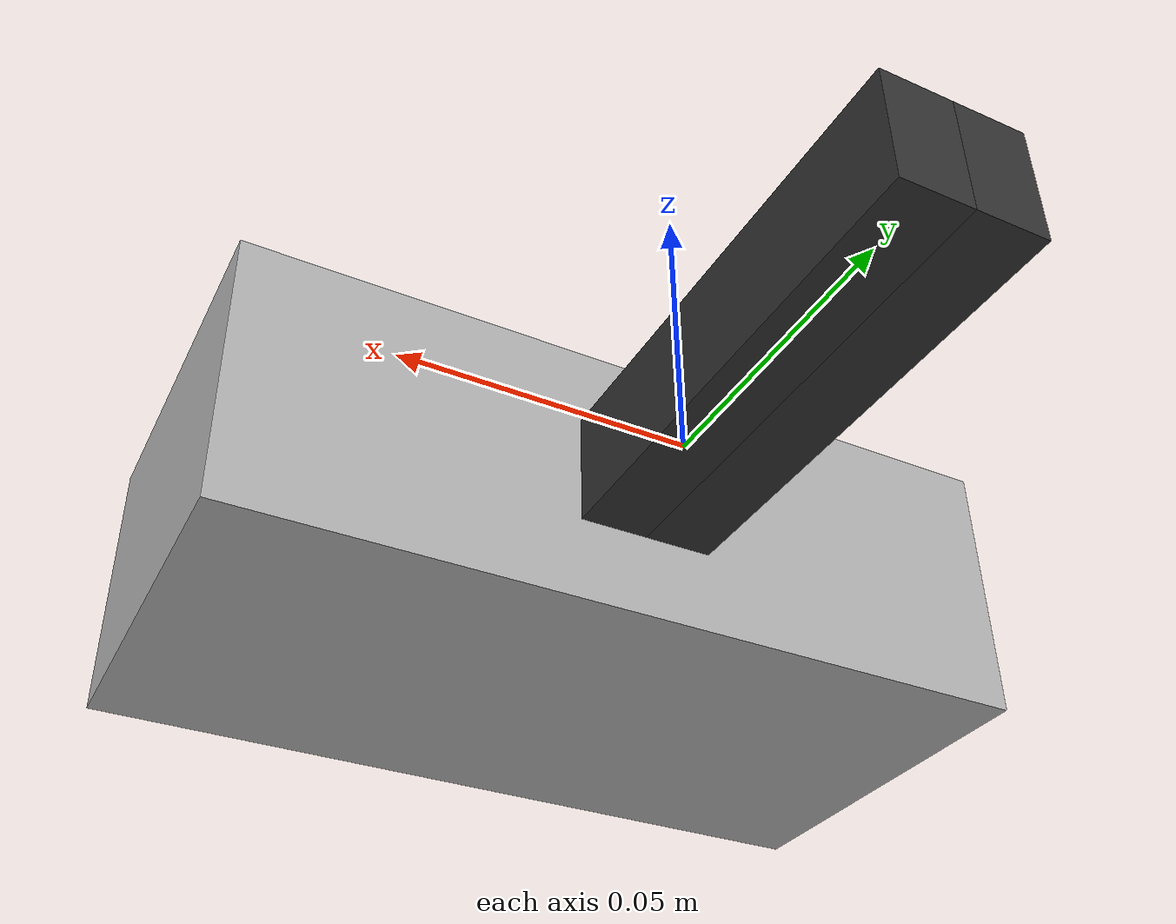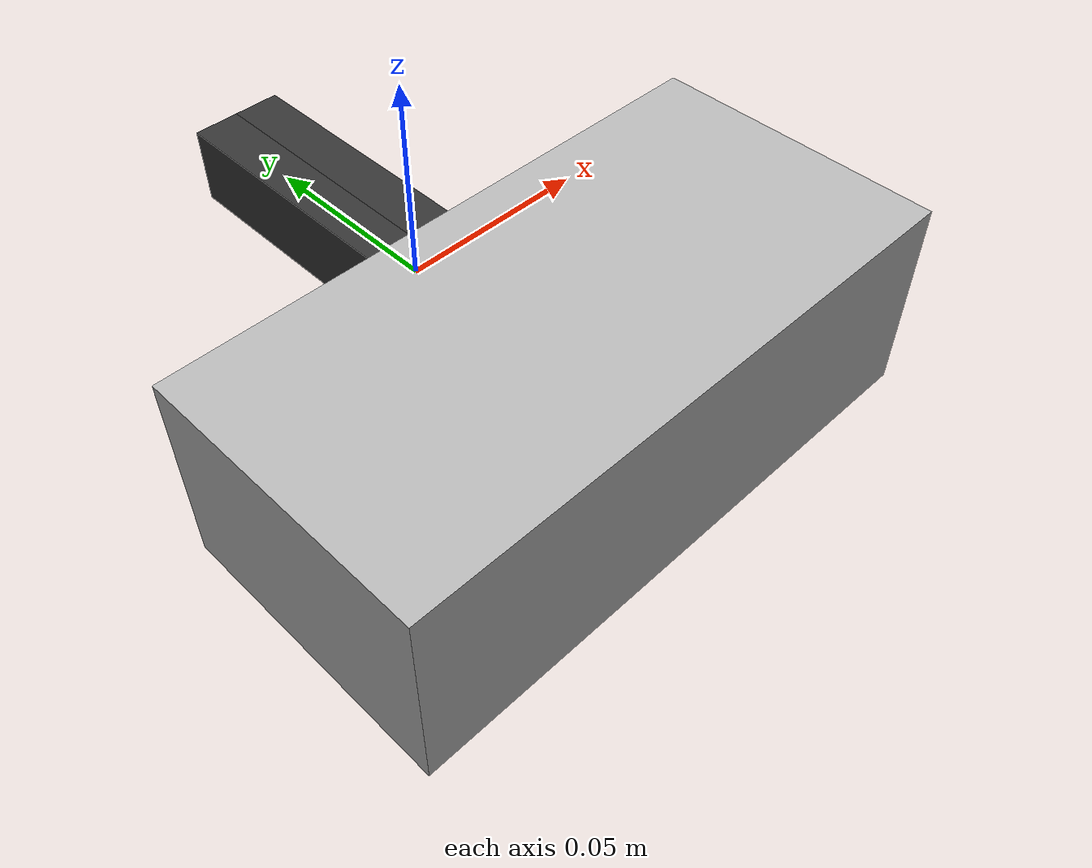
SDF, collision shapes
<?xml version="1.0"?>
<!-- This sdf file is based on schunk_wsg_50.sdf -->
<sdf version="1.7">
  <model name="robot">

    <!-- New base link for the gripper -->
    <link name="base_wsg">
      <pose>0 0 0 0 0 0</pose>
      <inertial>
        <mass>0.1</mass>
        <inertia>
          <ixx>0.001</ixx>
          <ixy>0</ixy>
          <ixz>0</ixz>
          <iyy>0.001</iyy>
          <iyz>0</iyz>
          <izz>0.001</izz>
        </inertia>
      </inertial>
    </link>
    <!-- Frame attached to gripper_base -->
    <frame name="wsg_base_frame">
      <pose relative_to="base_wsg"/>
    </frame>

    <link name="body">
      <pose>0 -0.049133 0 0 0 0</pose>
      <inertial>
        <mass>0.988882</mass>
        <inertia>
          <ixx>0.162992</ixx>
          <ixy>0</ixy>
          <ixz>0</ixz>
          <iyy>0.162992</iyy>
          <iyz>0</iyz>
          <izz>0.164814</izz>
        </inertia>
      </inertial>
      <visual name="visual">
        <geometry>
          <mesh>
            <scale>1 1 1</scale>
            <uri>package://drake_models/wsg_50_description/meshes/wsg_body.gltf</uri>
          </mesh>
        </geometry>
        <material>
          <diffuse>0.7 0.7 0.7 1</diffuse>
        </material>
      </visual>
      <collision name="collision">
        <geometry>
          <box>
            <size>0.146 0.0725 0.05</size>
          </box>
        </geometry>
        <surface>
          <friction>
            <ode>
              <mu>1</mu>
              <mu2>1</mu2>
              <fdir1>0 0 0</fdir1>
              <slip1>0</slip1>
              <slip2>0</slip2>
            </ode>
            <torsional>
              <coefficient>1</coefficient>
              <patch_radius>0</patch_radius>
              <surface_radius>0</surface_radius>
              <use_patch_radius>1</use_patch_radius>
              <ode>
                <slip>0</slip>
              </ode>
            </torsional>
          </friction>
          <bounce>
            <restitution_coefficient>0</restitution_coefficient>
            <threshold>1e+06</threshold>
          </bounce>
          <contact>
            <collide_without_contact>0</collide_without_contact>
            <collide_without_contact_bitmask>1</collide_without_contact_bitmask>
            <collide_bitmask>1</collide_bitmask>
            <ode>
              <soft_cfm>0</soft_cfm>
              <soft_erp>0.2</soft_erp>
              <kp>1e+13</kp>
              <kd>1</kd>
              <max_vel>0.01</max_vel>
              <min_depth>0</min_depth>
            </ode>
            <bullet>
              <split_impulse>1</split_impulse>
              <split_impulse_penetration_threshold>-0.01</split_impulse_penetration_threshold>
              <soft_cfm>0</soft_cfm>
              <soft_erp>0.2</soft_erp>
              <kp>1e+13</kp>
              <kd>1</kd>
            </bullet>
          </contact>
        </surface>
      </collision>
    </link>
    <frame name="body_frame">
      <pose relative_to="body"/>
    </frame>

    <link name="left_finger">
      <pose>-0.006 0.028 0 0 3.141592 0</pose>
      <inertial>
        <mass>0.05</mass>
        <inertia>
          <ixx>0.16</ixx>
          <ixy>0</ixy>
          <ixz>0</ixz>
          <iyy>0.16</iyy>
          <iyz>0</iyz>
          <izz>0.16</izz>
        </inertia>
      </inertial>
      <visual name="visual">
        <geometry>
          <mesh>
            <scale>1 1 1</scale>
            <uri>package://drake_models/wsg_50_description/meshes/finger_without_tip.gltf</uri>
          </mesh>
        </geometry>
        <material>
          <diffuse>0.2 0.2 0.2 1</diffuse>
        </material>
      </visual>
      <collision name="collision">
        <geometry>
          <box>
            <size>0.012 0.082 0.02</size>
          </box>
        </geometry>
        <surface>
          <friction>
            <ode>
              <mu>1</mu>
              <mu2>1</mu2>
              <fdir1>0 0 0</fdir1>
              <slip1>0</slip1>
              <slip2>0</slip2>
            </ode>
            <torsional>
              <coefficient>1</coefficient>
              <patch_radius>0</patch_radius>
              <surface_radius>0</surface_radius>
              <use_patch_radius>1</use_patch_radius>
              <ode>
                <slip>0</slip>
              </ode>
            </torsional>
          </friction>
          <bounce>
            <restitution_coefficient>0</restitution_coefficient>
            <threshold>1e+06</threshold>
          </bounce>
          <contact>
            <collide_without_contact>0</collide_without_contact>
            <collide_without_contact_bitmask>1</collide_without_contact_bitmask>
            <collide_bitmask>1</collide_bitmask>
            <ode>
              <soft_cfm>0</soft_cfm>
              <soft_erp>0.2</soft_erp>
              <kp>1e+13</kp>
              <kd>1</kd>
              <max_vel>0.01</max_vel>
              <min_depth>0</min_depth>
            </ode>
            <bullet>
              <split_impulse>1</split_impulse>
              <split_impulse_penetration_threshold>-0.01</split_impulse_penetration_threshold>
              <soft_cfm>0</soft_cfm>
              <soft_erp>0.2</soft_erp>
              <kp>1e+13</kp>
              <kd>1</kd>
            </bullet>
          </contact>
        </surface>
      </collision>
    </link>
    <frame name="left_finger_frame">
      <pose relative_to="left_finger"/>
    </frame>

    <link name="right_finger">
      <pose>0.006 0.028 0 0 0 0</pose>
      <inertial>
        <mass>0.05</mass>
        <inertia>
          <ixx>0.16</ixx>
          <ixy>0</ixy>
          <ixz>0</ixz>
          <iyy>0.16</iyy>
          <iyz>0</iyz>
          <izz>0.16</izz>
        </inertia>
      </inertial>
      <visual name="visual">
        <geometry>
          <mesh>
            <scale>1 1 1</scale>
            <uri>package://drake_models/wsg_50_description/meshes/finger_without_tip.gltf</uri>
          </mesh>
        </geometry>
        <material>
          <diffuse>0.2 0.2 0.2 1</diffuse>
        </material>
      </visual>
      <collision name="collision">
        <geometry>
          <box>
            <size>0.012 0.082 0.02</size>
          </box>
        </geometry>
        <surface>
          <friction>
            <ode>
              <mu>1</mu>
              <mu2>1</mu2>
              <fdir1>0 0 0</fdir1>
              <slip1>0</slip1>
              <slip2>0</slip2>
            </ode>
            <torsional>
              <coefficient>1</coefficient>
              <patch_radius>0</patch_radius>
              <surface_radius>0</surface_radius>
              <use_patch_radius>1</use_patch_radius>
              <ode>
                <slip>0</slip>
              </ode>
            </torsional>
          </friction>
          <bounce>
            <restitution_coefficient>0</restitution_coefficient>
            <threshold>1e+06</threshold>
          </bounce>
          <contact>
            <collide_without_contact>0</collide_without_contact>
            <collide_without_contact_bitmask>1</collide_without_contact_bitmask>
            <collide_bitmask>1</collide_bitmask>
            <ode>
              <soft_cfm>0</soft_cfm>
              <soft_erp>0.2</soft_erp>
              <kp>1e+13</kp>
              <kd>1</kd>
              <max_vel>0.01</max_vel>
              <min_depth>0</min_depth>
            </ode>
            <bullet>
              <split_impulse>1</split_impulse>
              <split_impulse_penetration_threshold>-0.01</split_impulse_penetration_threshold>
              <soft_cfm>0</soft_cfm>
              <soft_erp>0.2</soft_erp>
              <kp>1e+13</kp>
              <kd>1</kd>
            </bullet>
          </contact>
        </surface>
      </collision>
    </link>
    <frame name="right_finger_frame">
      <pose relative_to="right_finger"/>
    </frame>

    <joint name="left_finger_sliding_joint" type="prismatic">
      <parent>body</parent>
      <child>left_finger</child>
      <axis>
        <xyz>-1 0 0</xyz>
        <!-- Drake attaches an actuator to all and only joints with a nonzero
             effort limit. -->
        <limit>
          <lower>-0.055</lower>
          <upper>0</upper>
          <effort>80</effort>
          <stiffness>15000</stiffness>
        </limit>
        <dynamics>
          <spring_reference>0</spring_reference>
          <spring_stiffness>0</spring_stiffness>
          <damping>0</damping>
          <friction>0</friction>
        </dynamics>
      </axis>
    </joint>

    <joint name="right_finger_sliding_joint" type="prismatic">
      <parent>body</parent>
      <child>right_finger</child>
      <axis>
        <xyz>1 0 0</xyz>
        <!-- Drake attaches an actuator to all and only joints with a nonzero
             effort limit. -->
        <limit>
          <lower>0</lower>
          <upper>0.055</upper>
          <effort>80</effort>
          <stiffness>15000</stiffness>
        </limit>
        <mimic joint="left_finger_sliding_joint">
          <multiplier>-1.</multiplier>
          <offset>0.</offset>
          <reference>0.</reference>
        </mimic>
        <dynamics>
          <spring_reference>0</spring_reference>
          <spring_stiffness>0</spring_stiffness>
          <damping>0</damping>
          <friction>0</friction>
        </dynamics>
      </axis>
    </joint>

    <!-- Revolute joint between gripper_base and body -->
    <joint name="base_revolute_joint" type="revolute">
      <parent>base_wsg</parent>
      <child>body</child>
      <axis>
        <xyz>0 1 0</xyz> <!-- Allow rotation around Z-axis -->
        <limit>
          <lower>-1.</lower> <!-- Lower limit: -180 degrees -->
          <upper>1.</upper> <!-- Upper limit: 180 degrees -->
          <effort>5.0</effort> <!-- Optional: torque limit -->
        </limit>
        <dynamics>
          <damping>0.1</damping> <!-- Optional: damping coefficient -->
        </dynamics>
      </axis>
    </joint>
    <static>0</static>
  </model>
</sdf>
